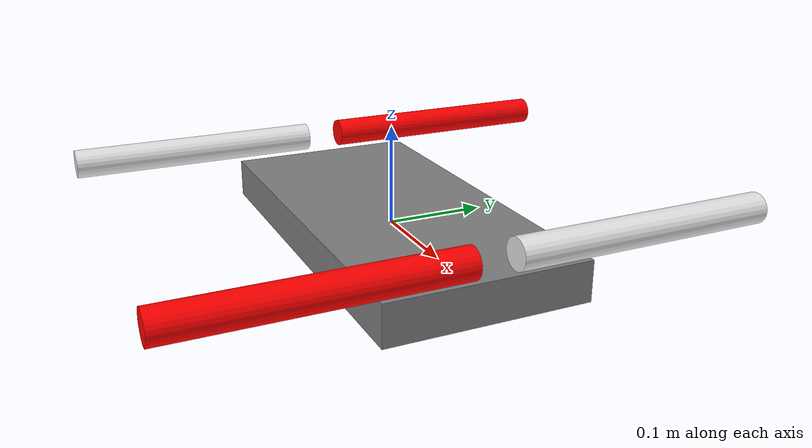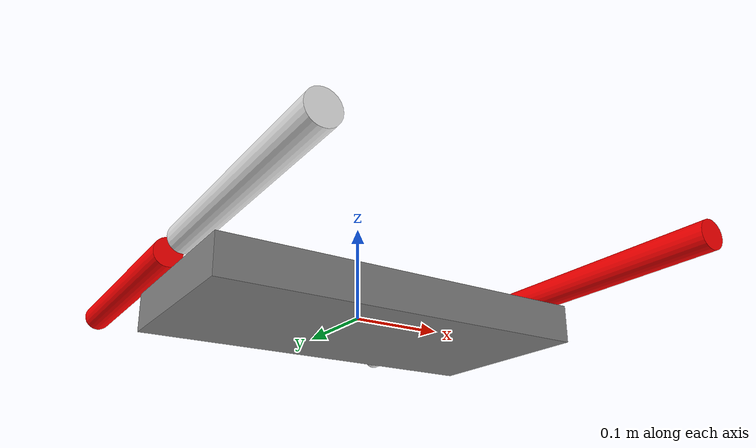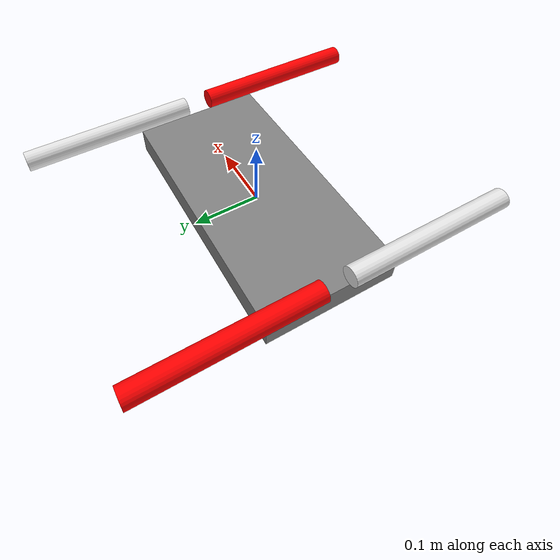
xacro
<?xml version="1.0"?>
<robot xmlns:xacro="http://www.ros.org/wiki/xacro"  >

      <xacro:include filename="inertial_macros.xacro"/>

      <material name="gray">
        <color rgba="0.5 0.5 0.5 1.0"/>
      </material>
      <material name="white">
        <color rgba="0.9 0.9 0.9 1.0"/>
      </material>
      <material name="red">
        <color rgba="1.0 0 0 1.0"/>
      </material>

      <link name="base_link">
        <visual>
          <origin xyz="0 0 0" rpy="0 0 0" />
          <geometry>
            <box size="0.4 0.2 0.04"/>
          </geometry>
          <material name="gray"/>
        </visual>
        <collision>
          <origin xyz="0 0 0"/>
          <geometry>
            <box size="0.4 0.2 0.04"/>
          </geometry>
        </collision>
        <xacro:inertial_box mass="0.5" x="0.4" y="0.2" z="0.04"/>
      </link>

      <gazebo reference="base_link">
        <material>Gazebo/Grey</material>
      </gazebo>

      <link name="FL">
        <visual>
          <origin xyz="0 0 0" rpy="${pi/2} 0 0" />
          <geometry>
            <cylinder length="0.26" radius="0.015"/>
          </geometry>
          <material name="white"/>
        </visual>
        <collision>
          <origin xyz="0 0 0" rpy="${pi/2} 0 0"/>
          <geometry>
            <cylinder length="0.26" radius="0.015"/>
          </geometry>
        </collision>
        <xacro:inertial_cylinder_y mass="0.05" l="0.26" r="0.015"/>
      </link>

      <gazebo reference="FL">
        <material>Gazebo/White</material>
      </gazebo>

      <link name="FR">
        <visual>
          <origin xyz="0 0 0" rpy="${pi/2} 0 0" />
          <geometry>
            <cylinder length="0.26" radius="0.015"/>
          </geometry>
          <material name="red"/>
        </visual>
        <collision>
          <origin xyz="0 0 0" rpy="${pi/2} 0 0"/>
          <geometry>
            <cylinder length="0.26" radius="0.015"/>
          </geometry>
        </collision>
        <xacro:inertial_cylinder_y mass="0.05" l="0.26" r="0.015"/>
      </link>

      <gazebo reference="FR">
        <material>Gazebo/Red</material>
      </gazebo>

      <link name="BL">
        <visual>
          <origin xyz="0 0 0" rpy="${pi/2} 0 0" />
          <geometry>
            <cylinder length="0.26" radius="0.015"/>
          </geometry>
          <material name="red"/>
        </visual>
        <collision>
          <origin xyz="0 0 0" rpy="${pi/2} 0 0"/>
          <geometry>
            <cylinder length="0.26" radius="0.015"/>
          </geometry>
        </collision>
        <xacro:inertial_cylinder_y mass="0.05" l="0.26" r="0.015"/>
      </link>

      <gazebo reference="BL">
        <material>Gazebo/Red</material>
      </gazebo>

      <link name="BR">
        <visual>
          <origin xyz="0 0 0" rpy="${pi/2} 0 0" />
          <geometry>
            <cylinder length="0.26" radius="0.015"/>
          </geometry>
          <material name="white"/>
        </visual>
        <collision>
          <origin xyz="0 0 0" rpy="${pi/2} 0 0"/>
          <geometry>
            <cylinder length="0.26" radius="0.015"/>
          </geometry>
        </collision>
        <xacro:inertial_cylinder_y mass="0.05" l="0.26" r="0.015"/>
      </link>

      <gazebo reference="BR">
        <material>Gazebo/White</material>
      </gazebo>

     <joint name="base_to_FL" type="continuous">
       <parent link="base_link"/>
       <child link="FL"/>
       <origin xyz="0.2 0.15 0.04" rpy="0 0 0" />
       <axis xyz="0 0 1"/>
     </joint>
     <joint name="base_to_FR" type="continuous">
       <parent link="base_link"/>
       <child link="FR"/>
       <origin xyz="0.2 -0.15 0.04" rpy="0 0 0" />
       <axis xyz="0 0 -1"/>
     </joint>
     <joint name="base_to_BL" type="continuous">
       <parent link="base_link"/>
       <child link="BL"/>
       <origin xyz="-0.2 0.15 0.04" rpy="0 0 0" />
       <axis xyz="0 0 -1"/>
     </joint>
     <joint name="base_to_BR" type="continuous">
       <parent link="base_link"/>
       <child link="BR"/>
       <origin xyz="-0.2 -0.15 0.04" rpy="0 0 0" />
       <axis xyz="0 0 1"/>
     </joint>
</robot>

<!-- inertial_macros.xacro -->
<robot xmlns:xacro="http://www.ros.org/wiki/xacro" >

    <!-- Specify some standard inertial calculations https://en.wikipedia.org/wiki/List_of_moments_of_inertia -->
    <!-- These make use of xacro's mathematical functionality -->

    <xacro:macro name="inertial_box" params="mass x y z">
        <inertial>
            <mass value="${mass}" />
            <inertia ixx="${(1/12) * mass * (y*y+z*z)}" ixy="0.0" ixz="0.0"
                    iyy="${(1/12) * mass * (x*x+z*z)}" iyz="0.0"
                    izz="${(1/12) * mass * (x*x+y*y)}" />
        </inertial>
    </xacro:macro>

    <xacro:macro name="inertial_cylinder_y" params="mass l r">
        <inertial>
            <mass value="${mass}" />
            <inertia ixx="${(1/12) * mass * (3*r*r + l*l)}" ixy="0.0" ixz="0.0"
                    iyy="${(1/2) * mass * (r*r)}" iyz="0.0"
                    izz="${(1/12) * mass * (3*r*r + l*l)}" />
        </inertial>
    </xacro:macro>

</robot>
